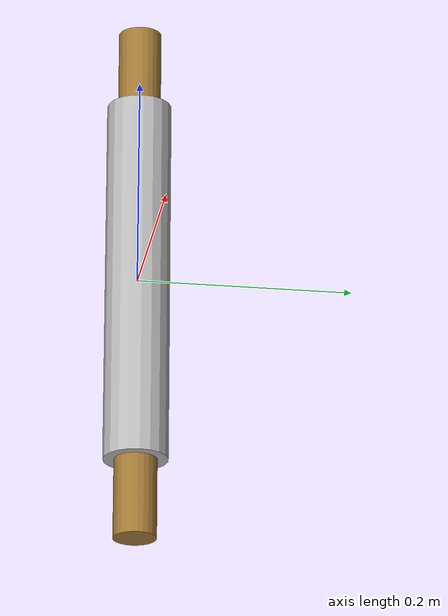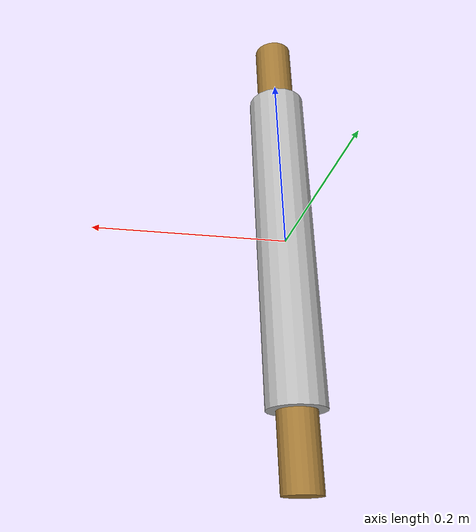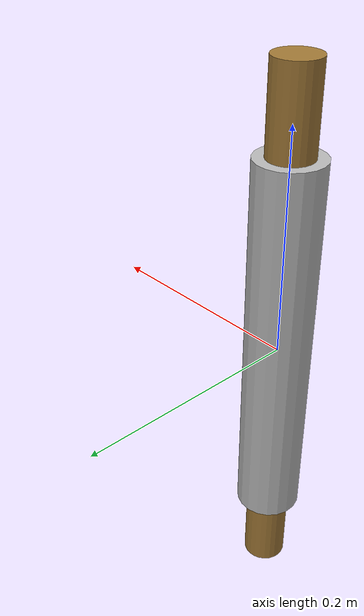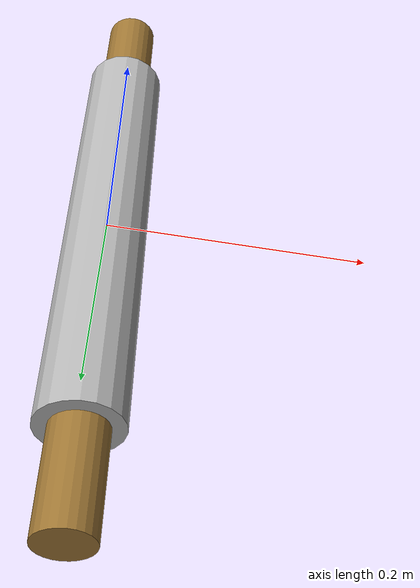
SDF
<?xml version="1.0"?>
<sdf version="1.7">
  <model name="rolling_pin">
    <link name="handle">
      <inertial>
        <mass>0.3</mass> <!-- density 500 kg/m^3 -->
        <inertia>
          <ixx>6.28e-3</ixx>
          <iyy>6.28e-3</iyy>
          <izz>6.0e-5</izz>
          <ixy>0</ixy>
          <ixz>0</ixz>
          <iyz>0</iyz>
        </inertia>
      </inertial>
      <visual name="handle_visual">
        <geometry>
          <cylinder>
            <radius>0.02</radius>
            <length>0.5</length>
          </cylinder>
        </geometry>
        <material>
          <diffuse>0.63 0.47 0.21 1.0</diffuse>
        </material>
      </visual>
      <collision name="handle_collision">
        <geometry>
          <cylinder>
            <radius>0.02</radius>
            <length>0.5</length>
          </cylinder>
        </geometry>
        <drake:proximity_properties>
          <drake:mu_dynamic>1.5</drake:mu_dynamic>
          <drake:mu_static>1.5</drake:mu_static>
          <drake:mesh_resolution_hint>0.01</drake:mesh_resolution_hint>
          <drake:hydroelastic_modulus>1e6</drake:hydroelastic_modulus>
          <drake:hunt_crossley_dissipation>5</drake:hunt_crossley_dissipation>
          <drake:compliant_hydroelastic/>
        </drake:proximity_properties>
      </collision>
    </link>
    <link name="roller">
      <inertial>
        <mass>0.27</mass> <!-- density 500 kg/m^3 -->
        <inertia>
          <ixx>6.28e-3</ixx>
          <iyy>6.28e-3</iyy>
          <izz>1.7e-4</izz>
          <ixy>0</ixy>
          <ixz>0</ixz>
          <iyz>0</iyz>
        </inertia>
      </inertial>
      <visual name="roller_visual">
        <geometry>
          <mesh>
            <uri>roller.obj</uri>
          </mesh>
        </geometry>
      </visual>
      <collision name="roller_collision">
        <geometry>
          <cylinder>
            <radius>0.03</radius>
            <length>0.35</length>
          </cylinder>
        </geometry>
      </collision>
    </link>
    <joint name="pin" type="revolute">
      <!-- Pose of the joint frame in the roller's frame (located at the point
           mass) -->
      <pose>0 0 0 0 0 0</pose>
      <parent>handle</parent>
      <child>roller</child>
      <axis>
        <xyz>0.0 0.0 1.0</xyz>
        <limit>
          <!-- The pin joint is not actuated. -->
          <effort>0</effort>
        </limit>
        <dynamics>
          <damping>0.0004</damping>
        </dynamics>
      </axis>
    </joint>
  </model>
</sdf>
